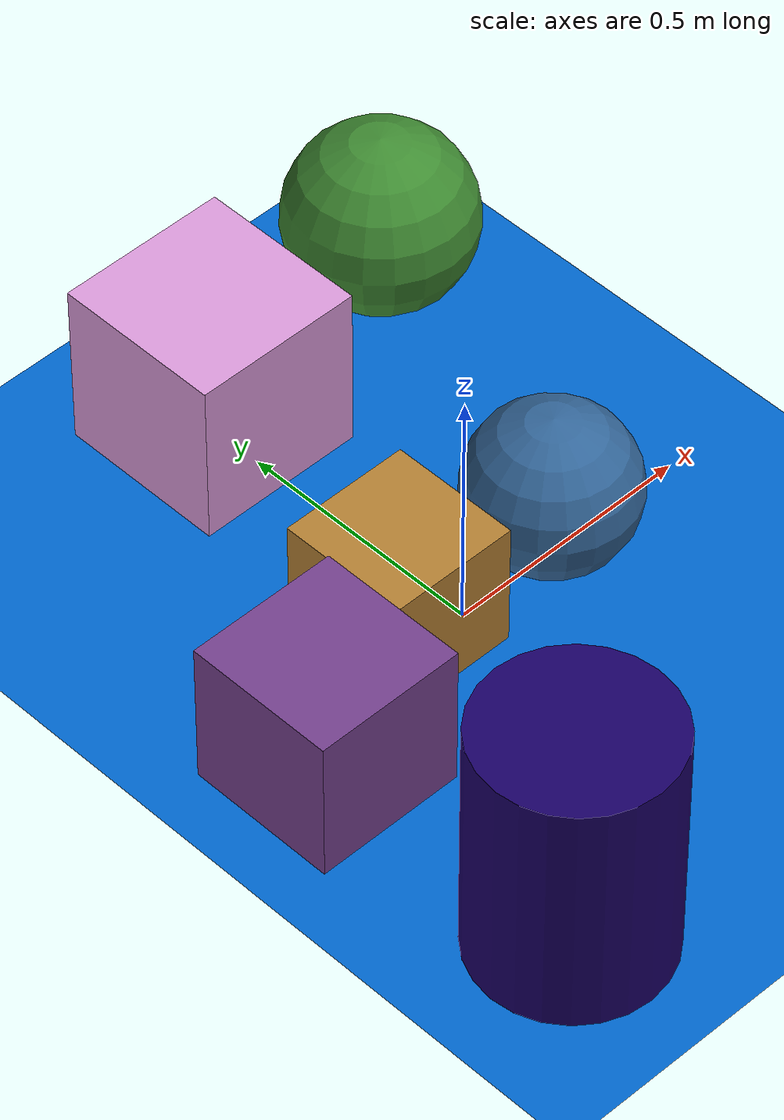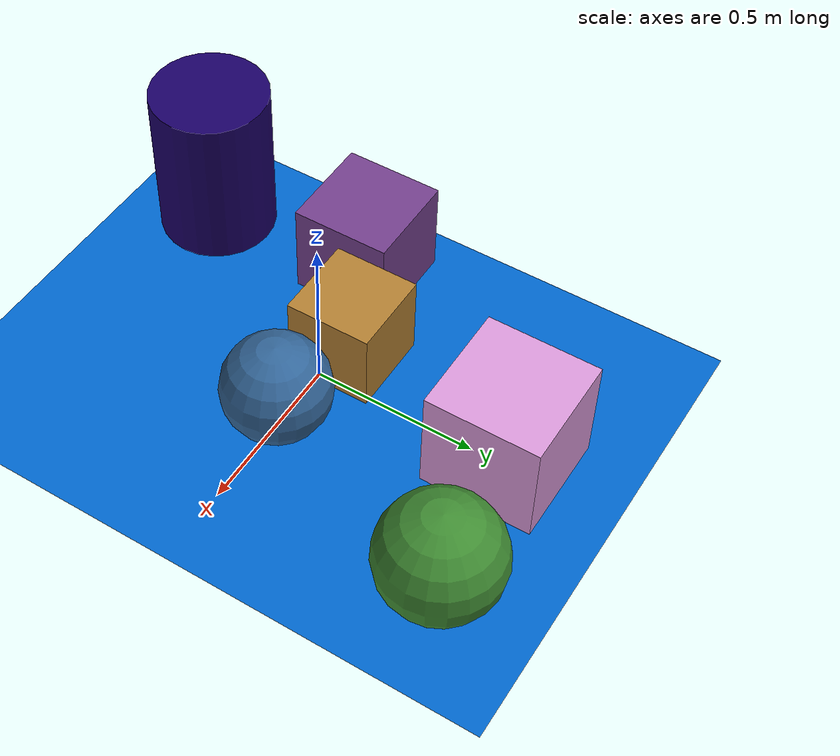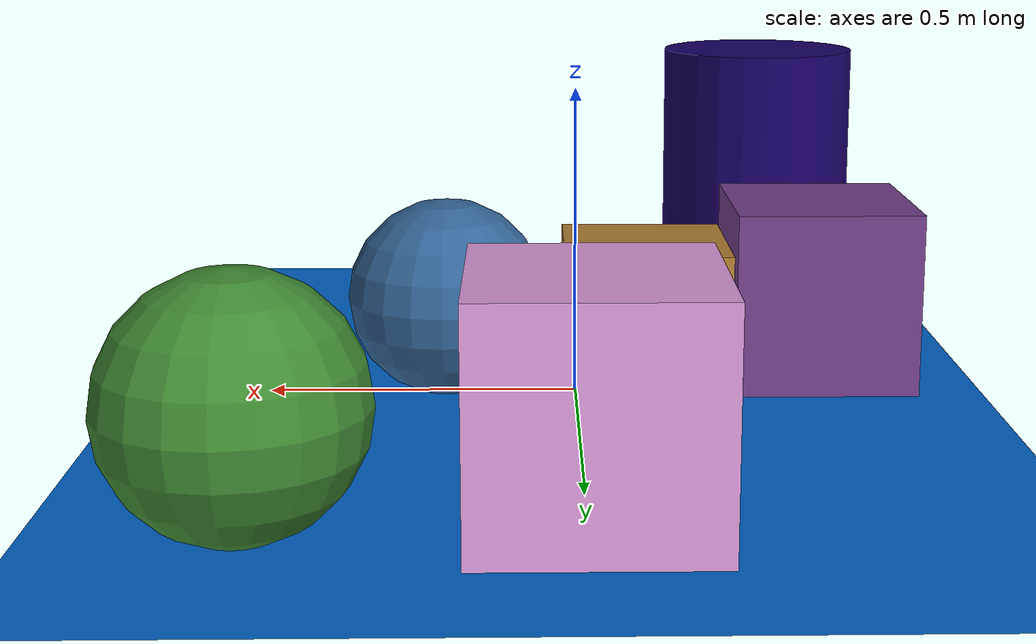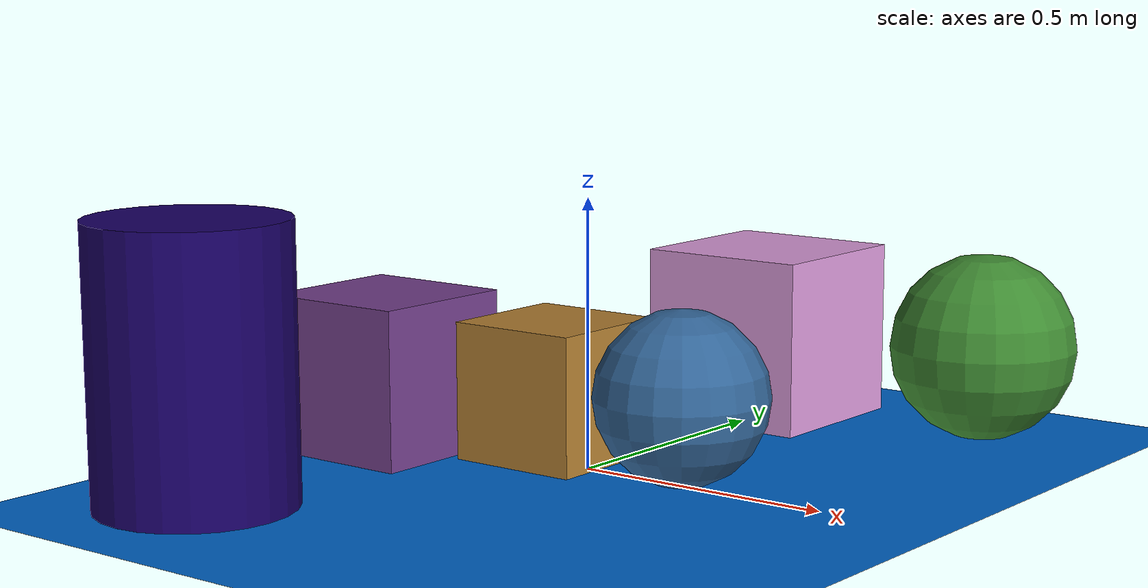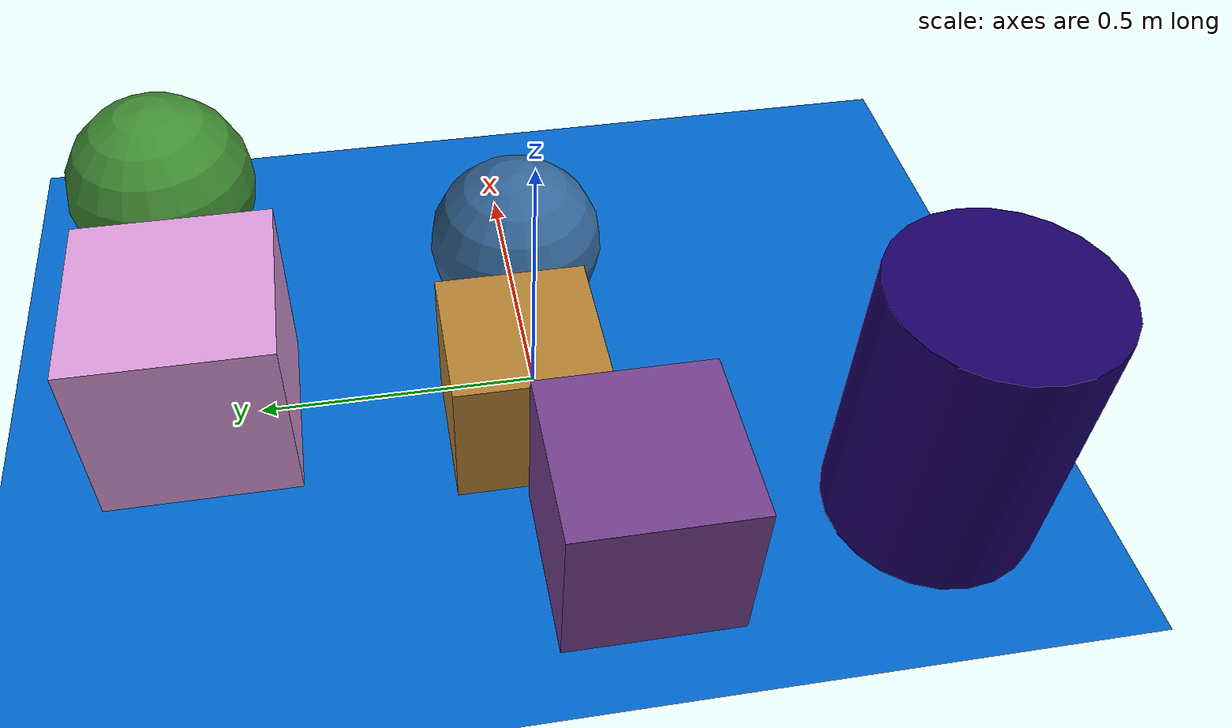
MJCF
<mujoco>
   <asset>
<texture type="skybox" builtin="gradient" rgb1="0.7 0.1 0.0" rgb2="0.7 0.9 0.9" width="256" height="256"/>
<texture name="gradient_0" builtin="gradient" rgb1="0.8 0.4 1.0" rgb2="0.9 0.8 0.7" width="200" height="200"/>
<texture name="gradient_1" builtin="gradient" rgb1="0.9 0.3 0.4" rgb2="0.0 0.2 0.7" width="200" height="200"/>
<texture name="checker_2" builtin="checker" type="2d" rgb1="0.1 0.1 0.4" rgb2="0.4 1.0 0.0" width="200" height="200"/>
<texture name="checker_3" builtin="checker" type="2d" rgb1="0.3 0.2 0.9" rgb2="0.1 0.6 0.3" width="200" height="200"/>
<texture name="flat_4" builtin="flat" rgb1="0.7 0.5 0.2" rgb2="0.7 0.5 0.2"  width="200" height="200"/>
<texture name="flat_5" builtin="flat" rgb1="0.1 0.0 0.4" rgb2="0.1 0.0 0.4"  width="200" height="200"/><material name="gradient_0_mat" reflectance="0" texture="gradient_0" texuniform="true"/>
<material name="gradient_1_mat" reflectance="0" texture="gradient_1" texuniform="true"/>
<material name="checker_2_mat" reflectance="0" texrepeat="7 7" texture="checker_2" texuniform="false" />
<material name="checker_3_mat" reflectance="0" texrepeat="3 3" texture="checker_3" texuniform="false" />
<material name="flat_4_mat" reflectance="0" texture="flat_4" texuniform="true"/>
<material name="flat_5_mat" reflectance="0" texture="flat_5" texuniform="true"/>
   </asset>

   <worldbody>
      <light diffuse=".9 .9 .9" pos="0 0 3" dir="0 0 -1"/>
     <geom type="plane" size="1 1 0.1" rgba="0.0 0.4 0.8 1"/>
<geom type="box" pos="-0.01 0.6 0.17" size="0.17 0.17 0.17" material="gradient_0_mat" />
<geom type="box" pos="-0.41 -0.1 0.15" size="0.15 0.15 0.15" material="gradient_1_mat" />
<geom type="sphere" pos="0.45 0.66 0.18" size="0.18 0.18 0.18" material="checker_2_mat" />
<geom type="sphere" pos="0.21 -0.0 0.16" size="0.16 0.16 0.16" material="checker_3_mat" />
<geom type="box" pos="-0.11 0.04 0.13" size="0.13 0.13 0.13" material="flat_4_mat" />
<geom type="cylinder" pos="-0.37 -0.62 0.25" size="0.18 0.25 0.25" material="flat_5_mat" /><camera euler="60 0 180" fovy="60" name="camera_a" pos="0 -1.5 1"></camera>   </worldbody>
</mujoco>
